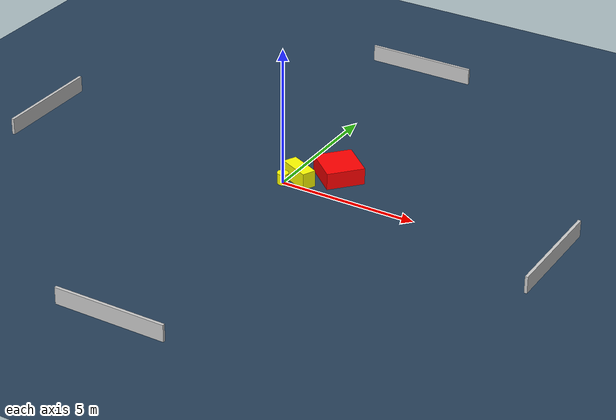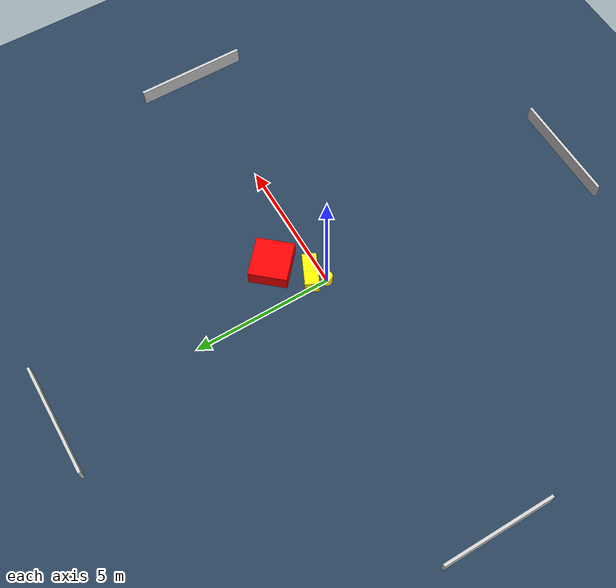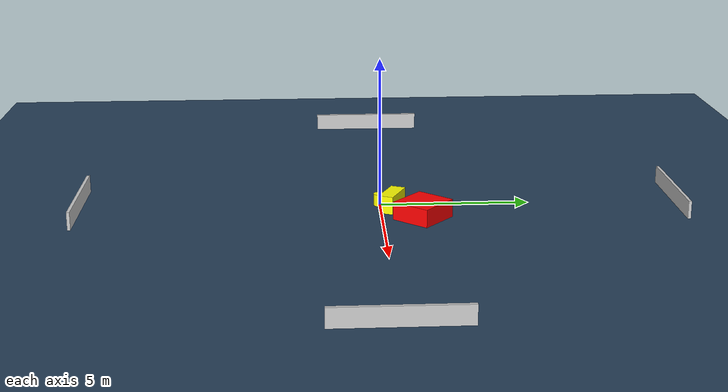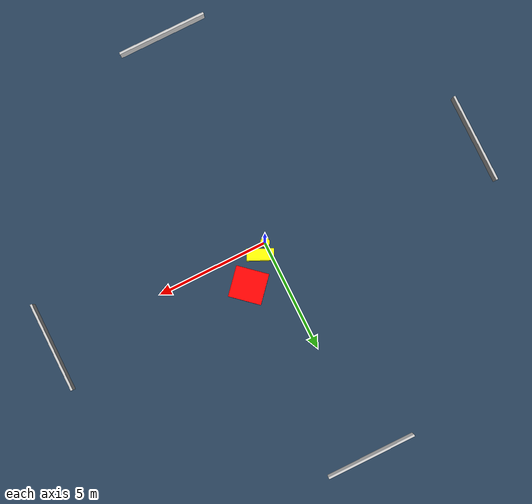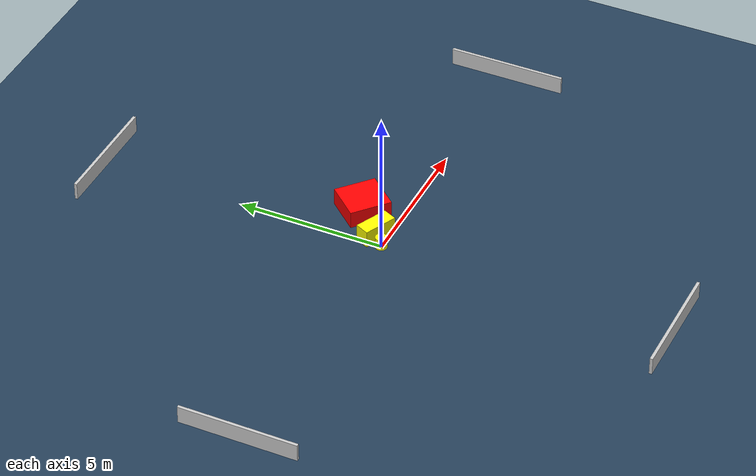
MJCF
<?xml version="1.0" ?>
<mujoco model="generated_environment">
  <option timestep="0.01" integrator="RK4" cone="elliptic"/>
  <default>
    <geom density="1"/>
  </default>
  <asset>
    <texture builtin="gradient" height="3072" name="skybox" rgb1="0.3 0.5 0.7" rgb2="0 0 0" type="skybox" width="512"/>
    <texture builtin="checker" height="300" name="groundplane" rgb1="0.2 0.3 0.4" rgb2="0.1 0.2 0.3" type="2d" width="300"/>
    <material name="groundplane" reflectance="0.2" texrepeat="5 5" texture="groundplane"/>
  </asset>
  <worldbody>
    <light dir="0 0 -1" directional="true" pos="0 0 1.5"/>
    <geom condim="3" friction="0.5 0.005 0.001" material="groundplane" name="floor" pos="0 0 0" size="0 0 0.05" type="plane"/>
    <body name="walls">
      <geom name="wall_1" condim="4" pos="-10.0 0.0 0.3" rgba="0.800000011920929 0.800000011920929 0.800000011920929 1.0" size="0.05 2.0 0.3" type="box"/>
      <geom name="wall_2" condim="4" pos="10.0 0.0 0.3" rgba="0.800000011920929 0.800000011920929 0.800000011920929 1.0" size="0.05 2.0 0.3" type="box"/>
      <geom name="wall_3" condim="4" pos="0.0 -10.0 0.3" rgba="0.800000011920929 0.800000011920929 0.800000011920929 1.0" size="2.0 0.05 0.3" type="box"/>
      <geom name="wall_4" condim="4" pos="0.0 10.0 0.3" rgba="0.800000011920929 0.800000011920929 0.800000011920929 1.0" size="2.0 0.05 0.3" type="box"/>
    </body>
    <body name="robot">
      <joint name="joint_x" type="slide" pos="0 0 0" axis="1 0 0"/>
      <joint name="joint_y" type="slide" pos="0 0 0" axis="0 1 0"/>
      <geom name="robot" type="cylinder" pos="0.0 0.0 0.2" size="0.2 0.2 0.0" mass="5.0" friction="1.0 0.005 0.0001" condim="4" rgba="1.0 1.0 0.0 1.0"/>
    </body>
    <body name="obstacle_1_movable">
      <geom name="obstacle_1_movable" condim="4" pos="0.4168824529747844 0.38848903063243717 0.3" euler="0 0 245.08981739018648" friction="0.0 0.005 0.001" rgba="1.0 1.0 0.0 1.0" size="0.2501018597372291 0.587223260646919 0.3" type="box" mass="0.1"/>
      <joint type="free"/>
    </body>
    <body name="obstacle_2_static">
      <geom name="obstacle_2_static" condim="4" pos="1.4313124248485736 1.3346837665761364 0.3" euler="0 0 228.66706873861568" friction="0.0 0.005 0.001" rgba="1.0 0.0 0.0 1.0" size="0.6768645506924305 0.7170331738060098 0.3" type="box"/>
    </body>
  </worldbody>
  <actuator>
    <motor name="actuator_x" joint="joint_x" gear="1" ctrlrange="-1 1"/>
    <motor name="actuator_y" joint="joint_y" gear="1" ctrlrange="-1 1"/>
  </actuator>
</mujoco>
